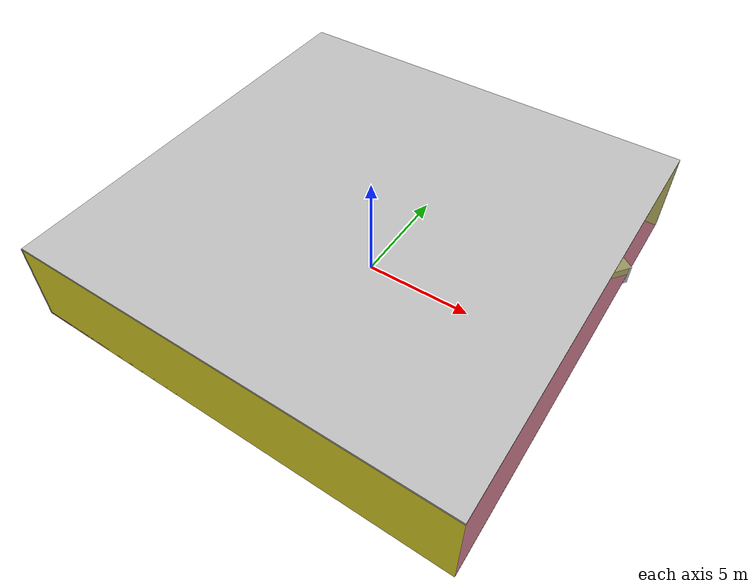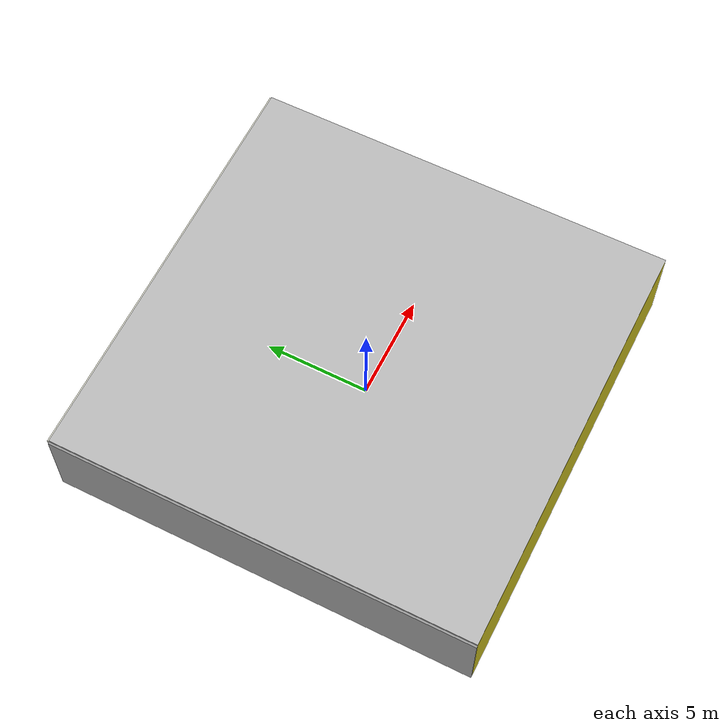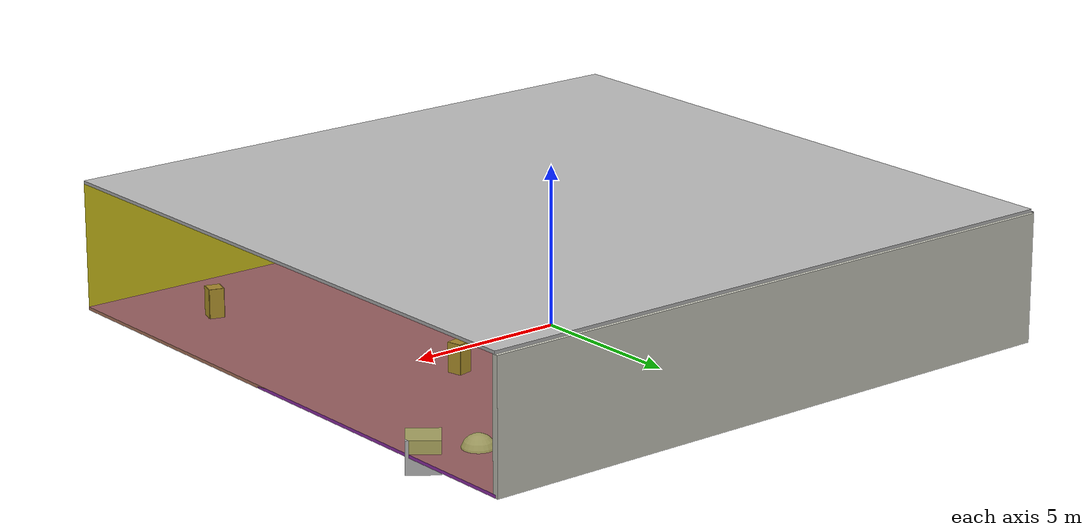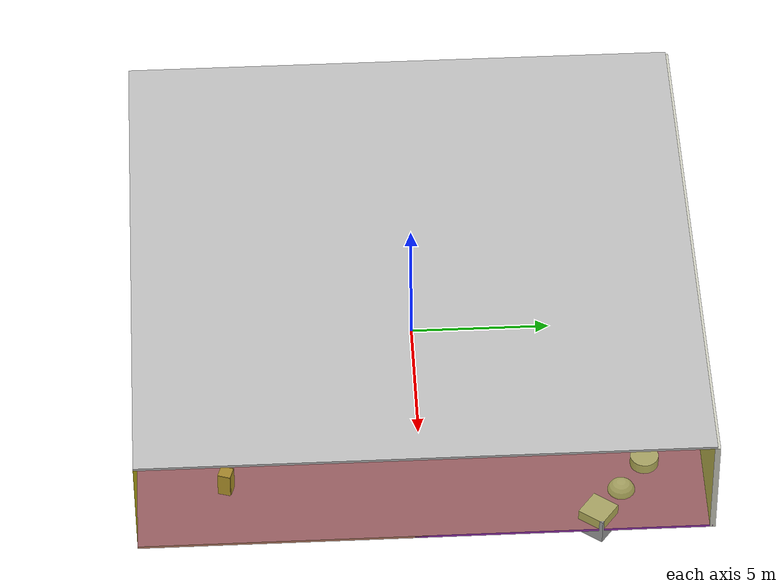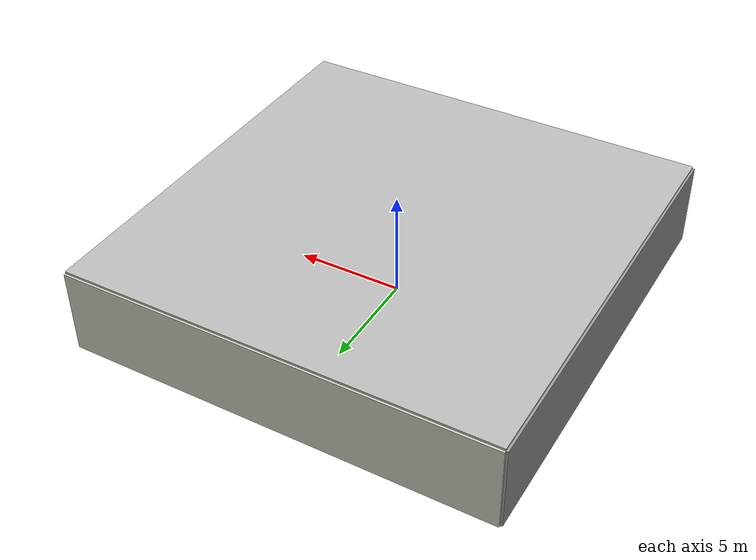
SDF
<sdf version="1.4">
 <world name="default">
  <physics type="ode">
   <max_step_size>0.001</max_step_size>
   <real_time_factor>1</real_time_factor>
   <real_time_update_rate>1000</real_time_update_rate>
   <gravity>0 0 -9.8</gravity>
  </physics>
  <scene><ambient>0.4 0.4 0.4 1</ambient><background>0.7 0.7 0.7 1</background><shadows>1</shadows></scene>
  <model name="Surrounding">
   <static>1</static>
   <link name="Ceiling">
    <collision name="Ceiling_Collision"><geometry><box><size>20 20 0.1</size></box></geometry></collision>
    <visual name="Ceiling_Visual">
     <geometry><box><size>20 20 0.1</size></box></geometry>
     <material>
      <script><uri>file://media/materials/scripts/gazebo.material</uri><name>Gazebo/CloudySky</name></script>
     </material>
    </visual>
    <pose>0 0 4.05 0 0 0</pose>
   </link>
   <link name="Wall_South">
    <collision name="Wall_South_Collision">
     <geometry><box><size>20 0 4</size></box></geometry>
     <pose>0 0 2 0 -0 0</pose>
    </collision>
    <visual name="Wall_South_Visual">
     <pose>0 0 2 0 -0 0</pose>
     <geometry><box><size>20 0 4</size></box></geometry>
     <material>
      <script><uri>file://media/materials/scripts/gazebo.material</uri><name>Gazebo/YellowGlow</name></script>
     </material>
    </visual>
    <velocity_decay><linear>0</linear><angular>0</angular></velocity_decay>
    <pose>0 -10 0 0 -0 0</pose>
   </link>
   <link name="Wall_East">
    <collision name="Wall_21_Collision">
     <geometry><box><size>20 0 4</size></box></geometry>
     <pose>0 0 2 0 -0 0</pose>
    </collision>
    <visual name="Wall_21_Visual">
     <pose>0 0 2 0 -0 0</pose>
     <geometry><box><size>20 0 4</size></box></geometry>
     <material>
      <script>
       <uri>file://media/materials/scripts/gazebo.material</uri>
       <name>Gazebo/YellowTransparent</name>
      </script>
     </material>
    </visual>
    <velocity_decay><linear>0</linear><angular>0</angular></velocity_decay>
    <pose>10 0 0 0 -0 1.5708</pose>
   </link>
   <link name="Wall_North">
    <collision name="Wall_22_Collision">
     <geometry><box><size>20 0.2 4</size></box></geometry>
     <pose>0 0 2 0 -0 0</pose>
    </collision>
    <visual name="Wall_22_Visual">
     <pose>0 0 2 0 -0 0</pose>
     <geometry><box><size>20 0.2 4</size></box></geometry>
     <material>
      <script><uri>file://media/materials/scripts/gazebo.material</uri><name>Gazebo/PaintedWall</name></script>
     </material>
    </visual>
    <velocity_decay><linear>0</linear><angular>0</angular></velocity_decay>
    <pose>0 10 0 0 -0 0</pose>
   </link>
   <link name="Wall_West">
    <collision name="Wall_23_Collision">
     <geometry><box><size>20 0.2 4</size></box></geometry>
     <pose>0 0 2 0 -0 0</pose>
    </collision>
    <visual name="Wall_23_Visual">
     <pose>0 0 2 0 -0 0</pose>
     <geometry><box><size>20 0.2 4</size></box></geometry>
     <material>
      <script><uri>file://media/materials/scripts/gazebo.material</uri><name>Gazebo/GreyGradientSky</name></script>
     </material>
    </visual>
    <velocity_decay><linear>0</linear><angular>0</angular></velocity_decay>
    <pose>-10 0 0 0 0 -1.5708</pose>
   </link>
   <link name="Ground_link">
    <collision name="collision">
     <pose>0 0 .05 0 -0 0</pose>
     <geometry><box><size>20 20 0.1</size></box></geometry>
    </collision>
    <visual name="visual">
     <pose>0 0 .05 0 -0 0</pose>
     <geometry><box><size>20 20 0.1</size></box></geometry>
     <material>
      <script><uri>file://media/materials/scripts/gazebo.material</uri><name>Gazebo/Purple</name></script>
     </material>
    </visual>
   </link>
   <static>1</static>
  </model>
  <spherical_coordinates>
   <surface_model>EARTH_WGS84</surface_model>
   <latitude_deg>0</latitude_deg>
   <longitude_deg>0</longitude_deg>
   <elevation>0</elevation>
   <heading_deg>0</heading_deg>
  </spherical_coordinates>
  <light name="lightball_0" type="diffuse">
   <diffuse>0.8 0.8 0.8 1</diffuse>
   <specular>0.2 0.2 0.2 1</specular>
   <attenuation>
    <range>100</range>
    <constant>0.7</constant>
    <linear>0.01</linear>
    <quadratic>0.001</quadratic>
   </attenuation>
   <direction>-0.5 0.1 -0.9</direction>
   <pose>-4.00103272953 4.70643912896 3.85235200211 0 0 0</pose>
  </light>
  <light name="lightball_1" type="diffuse">
   <diffuse>0.8 0.8 0.8 1</diffuse>
   <specular>0.2 0.2 0.2 1</specular>
   <attenuation>
    <range>100</range>
    <constant>0.7</constant>
    <linear>0.01</linear>
    <quadratic>0.001</quadratic>
   </attenuation>
   <direction>-0.5 0.1 -0.9</direction>
   <pose>9.84474168592 -8.83500680504 1.38713331646 0 0 0</pose>
  </light>
  <light name="lightball_2" type="diffuse">
   <diffuse>0.8 0.8 0.8 1</diffuse>
   <specular>0.2 0.2 0.2 1</specular>
   <attenuation>
    <range>100</range>
    <constant>0.7</constant>
    <linear>0.01</linear>
    <quadratic>0.001</quadratic>
   </attenuation>
   <direction>-0.5 0.1 -0.9</direction>
   <pose>4.92018663475 6.63225998306 2.70865075308 0 0 0</pose>
  </light>
  <light name="lightball_3" type="diffuse">
   <diffuse>0.8 0.8 0.8 1</diffuse>
   <specular>0.2 0.2 0.2 1</specular>
   <attenuation>
    <range>100</range>
    <constant>0.7</constant>
    <linear>0.01</linear>
    <quadratic>0.001</quadratic>
   </attenuation>
   <direction>-0.5 0.1 -0.9</direction>
   <pose>0.700935742204 -1.41389011461 3.20664826793 0 0 0</pose>
  </light>
  <light name="lightball_4" type="diffuse">
   <diffuse>0.8 0.8 0.8 1</diffuse>
   <specular>0.2 0.2 0.2 1</specular>
   <attenuation>
    <range>100</range>
    <constant>0.7</constant>
    <linear>0.01</linear>
    <quadratic>0.001</quadratic>
   </attenuation>
   <direction>-0.5 0.1 -0.9</direction>
   <pose>0.886132829235 6.77565026244 0.787792048223 0 0 0</pose>
  </light>
  <light name="lightball_5" type="diffuse">
   <diffuse>0.8 0.8 0.8 1</diffuse>
   <specular>0.2 0.2 0.2 1</specular>
   <attenuation>
    <range>100</range>
    <constant>0.7</constant>
    <linear>0.01</linear>
    <quadratic>0.001</quadratic>
   </attenuation>
   <direction>-0.5 0.1 -0.9</direction>
   <pose>4.92152736141 -0.0209123256818 0.799068295788 0 0 0</pose>
  </light>
  <light name="lightball_6" type="diffuse">
   <diffuse>0.8 0.8 0.8 1</diffuse>
   <specular>0.2 0.2 0.2 1</specular>
   <attenuation>
    <range>100</range>
    <constant>0.7</constant>
    <linear>0.01</linear>
    <quadratic>0.001</quadratic>
   </attenuation>
   <direction>-0.5 0.1 -0.9</direction>
   <pose>8.90325487215 -4.22288037231 3.52695774722 0 0 0</pose>
  </light>
  <light name="lightball_7" type="diffuse">
   <diffuse>0.8 0.8 0.8 1</diffuse>
   <specular>0.2 0.2 0.2 1</specular>
   <attenuation>
    <range>100</range>
    <constant>0.7</constant>
    <linear>0.01</linear>
    <quadratic>0.001</quadratic>
   </attenuation>
   <direction>-0.5 0.1 -0.9</direction>
   <pose>0.7272637358 -4.56315283944 3.89987210487 0 0 0</pose>
  </light>
  <light name="lightball_8" type="diffuse">
   <diffuse>0.8 0.8 0.8 1</diffuse>
   <specular>0.2 0.2 0.2 1</specular>
   <attenuation>
    <range>100</range>
    <constant>0.7</constant>
    <linear>0.01</linear>
    <quadratic>0.001</quadratic>
   </attenuation>
   <direction>-0.5 0.1 -0.9</direction>
   <pose>5.01004270661 1.26444096221 0.518041835469 0 0 0</pose>
  </light>
  <light name="lightball_9" type="diffuse">
   <diffuse>0.8 0.8 0.8 1</diffuse>
   <specular>0.2 0.2 0.2 1</specular>
   <attenuation>
    <range>100</range>
    <constant>0.7</constant>
    <linear>0.01</linear>
    <quadratic>0.001</quadratic>
   </attenuation>
   <direction>-0.5 0.1 -0.9</direction>
   <pose>8.27956674412 -7.9623979356 1.82176101694 0 0 0</pose>
  </light>
  <light name="lightball_10" type="diffuse">
   <diffuse>0.8 0.8 0.8 1</diffuse>
   <specular>0.2 0.2 0.2 1</specular>
   <attenuation>
    <range>100</range>
    <constant>0.7</constant>
    <linear>0.01</linear>
    <quadratic>0.001</quadratic>
   </attenuation>
   <direction>-0.5 0.1 -0.9</direction>
   <pose>9.88142019586 5.06320133834 3.78288050647 0 0 0</pose>
  </light>
  <light name="lightball_11" type="diffuse">
   <diffuse>0.8 0.8 0.8 1</diffuse>
   <specular>0.2 0.2 0.2 1</specular>
   <attenuation>
    <range>100</range>
    <constant>0.7</constant>
    <linear>0.01</linear>
    <quadratic>0.001</quadratic>
   </attenuation>
   <direction>-0.5 0.1 -0.9</direction>
   <pose>5.75686382554 2.14661725874 2.88944131709 0 0 0</pose>
  </light>
  <include>
   <uri>model://textured_shapes</uri>
   <pose>-7.56108209118 -7.80973067571 0 0 0 1.12023215527</pose>
  </include>
  <include>
   <uri>model://construction_cone</uri>
   <pose>-8.22046433733 0.809295967239 0 0 0 1.11289259137</pose>
  </include>
  <include>
   <uri>model://robocup_3Dsim_goal</uri>
   <pose>0.702413039045 -1.1665206729 0 0 0 2.65535043142</pose>
  </include>
  <include><uri>model://cabinet</uri><pose>4.83390011404 1.74501192539 0 0 0 1.80082675822</pose></include>
  <include>
   <uri>model://construction_cone</uri>
   <pose>3.81864197481 6.78183225789 0 0 0 2.06375104284</pose>
  </include>
  <include><uri>model://cabinet</uri><pose>7.4967627185 -6.87920165074 0 0 0 1.26694029922</pose></include>
  <include>
   <uri>model://textured_shapes</uri>
   <pose>8.18767933308 6.95659094873 0 0 0 0.922056068923</pose>
  </include>
 </world>
</sdf>

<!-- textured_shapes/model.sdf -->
<sdf version="1.6">
  <model name="textured_shapes">
    <pose>0 0 0.5 0 0 0</pose>
    <link name="box">
      <pose>0 -1.5 0 0 0 0</pose>
      <collision name="collision">
        <geometry>
          <box>
            <size>1 1 1</size>
          </box>
        </geometry>
      </collision>
      <visual name="visual">
        <geometry>
          <box>
            <size>1 1 1</size>
          </box>
        </geometry>
        <material>
          <script>
            <uri>model://../model_source/models/textured_shapes/materials/scripts</uri>
            <uri>model://../model_source/models/textured_shapes/materials/textures</uri>
            <name>TexturedShape/Squares</name>
          </script>
        </material>
      </visual>
    </link>
    <link name="sphere">
      <collision name="collision">
        <geometry>
          <sphere>
            <radius>0.5</radius>
          </sphere>
        </geometry>
      </collision>
      <visual name="visual">
        <geometry>
          <sphere>
            <radius>0.5</radius>
          </sphere>
        </geometry>
        <material>
          <script>
            <uri>model://../model_source/models/textured_shapes/materials/scripts</uri>
            <uri>model://../model_source/models/textured_shapes/materials/textures</uri>
            <name>TexturedShape/Squares</name>
          </script>
        </material>
      </visual>
    </link>
    <link name="cylinder">
      <pose>0 1.5 0 0 0 0</pose>
      <collision name="collision">
        <geometry>
          <cylinder>
            <radius>0.5</radius>
            <length>1</length>
          </cylinder>
        </geometry>
      </collision>
      <visual name="visual">
        <geometry>
          <cylinder>
            <radius>0.5</radius>
            <length>1</length>
          </cylinder>
        </geometry>
        <material>
          <script>
            <uri>model://../model_source/models/textured_shapes/materials/scripts</uri>
            <uri>model://../model_source/models/textured_shapes/materials/textures</uri>
            <name>TexturedShape/Squares</name>
          </script>
        </material>
      </visual>
    </link>
  </model>
</sdf>

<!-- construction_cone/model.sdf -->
<sdf version="1.5">
  <model name="Construction Cone">
    <link name="link">
      <collision name="collision">
        <geometry>
          <mesh>
            <scale>10 10 10</scale>
            <uri>file://isr-testbed/construction_cone/meshes/construction_cone.dae</uri>
          </mesh>
        </geometry>
      </collision>
      <visual name="visual">
        <geometry>
          <mesh>
            <scale>10 10 10</scale>
            <uri>file://isr-testbed/construction_cone/meshes/construction_cone.dae</uri>
          </mesh>
        </geometry>
      </visual>
    </link>
  </model>
</sdf>

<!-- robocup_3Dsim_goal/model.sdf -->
<sdf version="1.5">
  <model name="robocup_3d_goal">
    <static>true</static>
    <link name="left_post">
      <pose>0 1.05 0.45 0 0 0</pose>
      <collision name="collision">
        <geometry>
          <cylinder>
            <radius>0.05</radius>
            <length>0.9</length>
          </cylinder>
        </geometry>
      </collision>
      <visual name="visual">
        <geometry>
          <cylinder>
            <radius>0.05</radius>
            <length>0.9</length>
          </cylinder>
        </geometry>
        <material>
          <script>
            <uri>file://media/materials/scripts/gazebo.material</uri>
            <name>Gazebo/ZincYellow</name>
          </script>
        </material>
      </visual>
    </link>
    <link name="left_support_horiz_lower">
      <pose>0.30 1.05 0.01 0 0 0</pose>
      <collision name="collision">
        <geometry>
          <box>
            <size>0.50 0.02 0.02</size>
          </box>
        </geometry>
      </collision>
      <visual name="visual">
        <geometry>
          <box>
            <size>0.50 0.02 0.02</size>
          </box>
        </geometry>
        <material>
          <script>
            <uri>file://media/materials/scripts/gazebo.material</uri>
            <name>Gazebo/White</name>
          </script>
        </material>
      </visual>
    </link>
    <link name="left_support_horiz_upper">
      <pose>0.30 1.05 0.79 0 0 0</pose>
      <collision name="collision">
        <geometry>
          <box>
            <size>0.50 0.02 0.02</size>
          </box>
        </geometry>
      </collision>
      <visual name="visual">
        <geometry>
          <box>
            <size>0.50 0.02 0.02</size>
          </box>
        </geometry>
        <material>
          <script>
            <uri>file://media/materials/scripts/gazebo.material</uri>
            <name>Gazebo/White</name>
          </script>
        </material>
      </visual>
    </link>
    <link name="left_support_vertical">
      <pose>0.56 1.05 0.4 0 1.5708 0</pose>
      <collision name="collision">
        <geometry>
          <box>
            <size>0.80 0.02 0.02</size>
          </box>
        </geometry>
      </collision>
      <visual name="visual">
        <geometry>
          <box>
            <size>0.80 0.02 0.02</size>
          </box>
        </geometry>
        <material>
          <script>
            <uri>file://media/materials/scripts/gazebo.material</uri>
            <name>Gazebo/White</name>
          </script>
        </material>
      </visual>
    </link>
    <link name="right_support_horiz_lower">
      <pose>0.30 -1.05 0.01 0 0 0</pose>
      <collision name="collision">
        <geometry>
          <box>
            <size>0.50 0.02 0.02</size>
          </box>
        </geometry>
      </collision>
      <visual name="visual">
        <geometry>
          <box>
            <size>0.50 0.02 0.02</size>
          </box>
        </geometry>
        <material>
          <script>
            <uri>file://media/materials/scripts/gazebo.material</uri>
            <name>Gazebo/White</name>
          </script>
        </material>
      </visual>
    </link>
    <link name="right_support_horiz_upper">
      <pose>0.30 -1.05 0.79 0 0 0</pose>
      <collision name="collision">
        <geometry>
          <box>
            <size>0.50 0.02 0.02</size>
          </box>
        </geometry>
      </collision>
      <visual name="visual">
        <geometry>
          <box>
            <size>0.50 0.02 0.02</size>
          </box>
        </geometry>
        <material>
          <script>
            <uri>file://media/materials/scripts/gazebo.material</uri>
            <name>Gazebo/White</name>
          </script>
        </material>
      </visual>
    </link>
    <link name="right_support_vertical">
      <pose>0.56 -1.05 0.4 0 1.5708 0</pose>
      <collision name="collision">
        <geometry>
          <box>
            <size>0.80 0.02 0.02</size>
          </box>
        </geometry>
      </collision>
      <visual name="visual">
        <geometry>
          <box>
            <size>0.80 0.02 0.02</size>
          </box>
        </geometry>
        <material>
          <script>
            <uri>file://media/materials/scripts/gazebo.material</uri>
            <name>Gazebo/White</name>
          </script>
        </material>
      </visual>
    </link>
    <link name="center_support_horiz_lower">
      <pose>0.56 0 0.01 0 1.5708 0</pose>
      <collision name="collision">
        <geometry>
          <box>
            <size>0.02 2.08 0.02</size>
          </box>
        </geometry>
      </collision>
      <visual name="visual">
        <geometry>
          <box>
            <size>0.02 2.08 0.02</size>
          </box>
        </geometry>
        <material>
          <script>
            <uri>file://media/materials/scripts/gazebo.material</uri>
            <name>Gazebo/White</name>
          </script>
        </material>
      </visual>
    </link>
    <link name="center_support_horiz_upper">
      <pose>0.56 0 0.79 0 1.5708 0</pose>
      <collision name="collision">
        <geometry>
          <box>
            <size>0.02 2.08 0.02</size>
          </box>
        </geometry>
      </collision>
      <visual name="visual">
        <geometry>
          <box>
            <size>0.02 2.08 0.02</size>
          </box>
        </geometry>
        <material>
          <script>
            <uri>file://media/materials/scripts/gazebo.material</uri>
            <name>Gazebo/White</name>
          </script>
        </material>
      </visual>
    </link>
    <link name="right_post">
      <pose>0 -1.05 0.45 0 0 0</pose>
      <collision name="collision">
        <geometry>
          <cylinder>
            <radius>0.05</radius>
            <length>0.9</length>
          </cylinder>
        </geometry>
      </collision>
      <visual name="visual">
        <geometry>
          <cylinder>
            <radius>0.05</radius>
            <length>0.9</length>
          </cylinder>
        </geometry>
        <material>
          <script>
            <uri>file://media/materials/scripts/gazebo.material</uri>
            <name>Gazebo/ZincYellow</name>
          </script>
        </material>
      </visual>
    </link>
    <link name="crossbar">
      <pose>0 0 0.85 1.57 1.57 0</pose>
      <collision name="collision">
        <geometry>
          <cylinder>
            <radius>0.05</radius>
            <length>2.0</length>
          </cylinder>
        </geometry>
      </collision>
      <visual name="visual">
        <geometry>
          <cylinder>
            <radius>0.05</radius>
            <length>2.0</length>
          </cylinder>
        </geometry>
        <material>
          <script>
            <uri>file://media/materials/scripts/gazebo.material</uri>
            <name>Gazebo/ZincYellow</name>
          </script>
        </material>
      </visual>
    </link>
    <link name="center_net">
      <pose>0.56 0 0.40 0 0 0</pose>
      <collision name="collision">
        <geometry>
          <box>
            <size>0.01 2.1 0.80</size>
          </box>
        </geometry>
      </collision>
      <visual name="visual">
        <geometry>
          <box>
            <size>0.01 2.1 0.80</size>
          </box>
        </geometry>
        <material>
          <script>
            <uri>model://../model_source/models/robocup09_spl_field/materials/scripts/</uri>
            <uri>model://../model_source/models/robocup09_spl_field/materials/textures/</uri>
            <name>RoboCup/Net</name>
          </script>
        </material>
      </visual>
    </link>
    <link name="left_net">
      <pose>0.30 1.05 0.40 0 0 0</pose>
      <collision name="collision">
        <geometry>
          <box>
            <size>0.50 0.01 0.76</size>
          </box>
        </geometry>
      </collision>
      <visual name="visual">
        <geometry>
          <box>
            <size>0.50 0.01 0.76</size>
          </box>
        </geometry>
        <material>
          <script>
            <uri>model://../model_source/models/robocup09_spl_field/materials/scripts/</uri>
            <uri>model://../model_source/models/robocup09_spl_field/materials/textures/</uri>
            <name>RoboCup/Net</name>
          </script>
        </material>
      </visual>
    </link>
    <link name="right_net">
      <pose>0.30 -1.05 0.40 0 0 0</pose>
      <collision name="collision">
        <geometry>
          <box>
            <size>0.50 0.01 0.76</size>
          </box>
        </geometry>
      </collision>
      <visual name="visual">
        <geometry>
          <box>
            <size>0.50 0.01 0.76</size>
          </box>
        </geometry>
        <material>
          <script>
            <uri>model://../model_source/models/robocup09_spl_field/materials/scripts/</uri>
            <uri>model://../model_source/models/robocup09_spl_field/materials/textures/</uri>
            <name>RoboCup/Net</name>
          </script>
        </material>
      </visual>
    </link>
  </model>
</sdf>

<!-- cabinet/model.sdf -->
<sdf version="1.5">
  <model name="cabinet">
    <static>true</static>
    <link name="cabinet_bottom_plate">
      <inertial>
        <pose>0 0 -1 0 0 0</pose>
        <inertia>
          <ixx>2.050000</ixx>
          <ixy>0</ixy>
          <ixz>0</ixz>
          <iyy>2.050000</iyy>
          <iyz>0</iyz>
          <izz>2.050000</izz>
        </inertia>
        <mass>25.000000</mass>
      </inertial>
      <collision name="cabinet_bottom_plate_geom">
        <pose>0 0 0.010000 0 0 0</pose>
        <geometry>
          <box>
            <size>0.450000 0.450000 0.020000</size>
          </box>
        </geometry>
      </collision>
      <visual name="cabinet_bottom_plate_geom_visual">
        <pose>0 0 0.010000 0 0 0</pose>
        <geometry>
          <box>
            <size>0.450000 0.450000 0.020000</size>
          </box>
        </geometry>
        <material>
          <script>
            <uri>model://media/materials/scripts/gazebo.material</uri>
            <name>Gazebo/Wood</name>
          </script>
        </material>
      </visual>
      <collision name="cabinet_bottom_plate_geom_cabinet_back_plate">
        <pose>0.235000 0 0.510000 0 0 0</pose>
        <geometry>
          <box>
            <size>0.020000 0.450000 1.020000</size>
          </box>
        </geometry>
      </collision>
      <visual name="cabinet_bottom_plate_geom_cabinet_back_plate_visual">
        <pose>0.235000 0 0.510000 0 0 0</pose>
        <geometry>
          <box>
            <size>0.020000 0.450000 1.020000</size>
          </box>
        </geometry>
        <material>
          <script>
            <uri>model://media/materials/scripts/gazebo.material</uri>
            <name>Gazebo/Wood</name>
          </script>
        </material>
      </visual>
      <collision name="cabinet_bottom_plate_geom_cabinet_left_plate">
        <pose>0 0.235000 0.510000 0 0 0</pose>
        <geometry>
          <box>
            <size>0.450000 0.020000 1.020000</size>
          </box>
        </geometry>
      </collision>
      <visual name="cabinet_bottom_plate_geom_cabinet_left_plate_visual">
        <pose>0 0.235000 0.510000 0 0 0</pose>
        <geometry>
          <box>
            <size>0.450000 0.020000 1.020000</size>
          </box>
        </geometry>
        <material>
          <script>
            <uri>model://media/materials/scripts/gazebo.material</uri>
            <name>Gazebo/Wood</name>
          </script>
        </material>
      </visual>
      <collision name="cabinet_bottom_plate_geom_cabinet_middle_plate">
        <pose>0 0 0.510000 0 0 0</pose>
        <geometry>
          <box>
            <size>0.450000 0.450000 0.020000</size>
          </box>
        </geometry>
      </collision>
      <visual name="cabinet_bottom_plate_geom_cabinet_middle_plate_visual">
        <pose>0 0 0.510000 0 0 0</pose>
        <geometry>
          <box>
            <size>0.450000 0.450000 0.020000</size>
          </box>
        </geometry>
        <material>
          <script>
            <uri>model://media/materials/scripts/gazebo.material</uri>
            <name>Gazebo/Wood</name>
          </script>
        </material>
      </visual>
      <collision name="cabinet_bottom_plate_geom_cabinet_right_plate">
        <pose>0 -0.235000 0.510000 0 0 0</pose>
        <geometry>
          <box>
            <size>0.450000 0.020000 1.020000</size>
          </box>
        </geometry>
      </collision>
      <visual name="cabinet_bottom_plate_geom_cabinet_right_plate_visual">
        <pose>0 -0.235000 0.510000 0 0 0</pose>
        <geometry>
          <box>
            <size>0.450000 0.020000 1.020000</size>
          </box>
        </geometry>
        <material>
          <script>
            <uri>model://media/materials/scripts/gazebo.material</uri>
            <name>Gazebo/Wood</name>
          </script>
        </material>
      </visual>
      <collision name="cabinet_bottom_plate_geom_cabinet_top_plate">
        <pose>0 0 1.010000 0 0 0</pose>
        <geometry>
          <box>
            <size>0.450000 0.450000 0.020000</size>
          </box>
        </geometry>
      </collision>
      <visual name="cabinet_bottom_plate_geom_cabinet_top_plate_visual">
        <pose>0 0 1.010000 0 0 0</pose>
        <geometry>
          <box>
            <size>0.450000 0.450000 0.020000</size>
          </box>
        </geometry>
        <material>
          <script>
            <uri>model://media/materials/scripts/gazebo.material</uri>
            <name>Gazebo/Wood</name>
          </script>
        </material>
      </visual>
    </link>
  </model>
</sdf>
